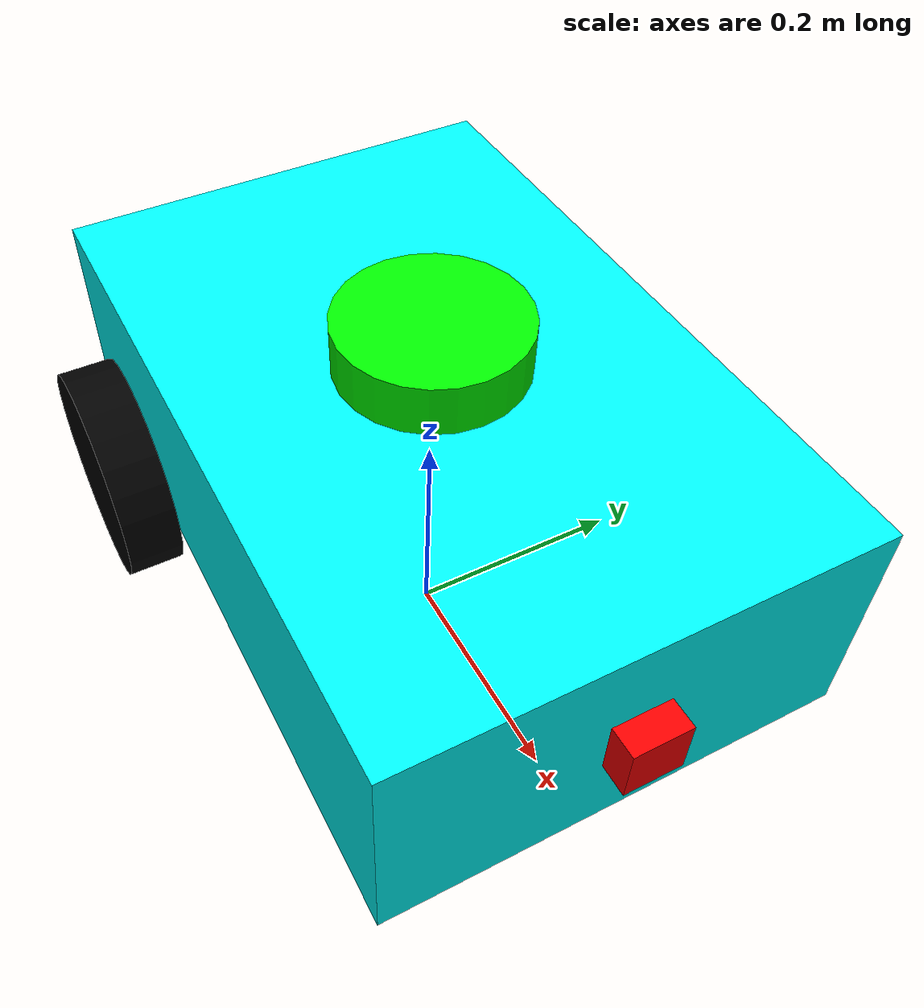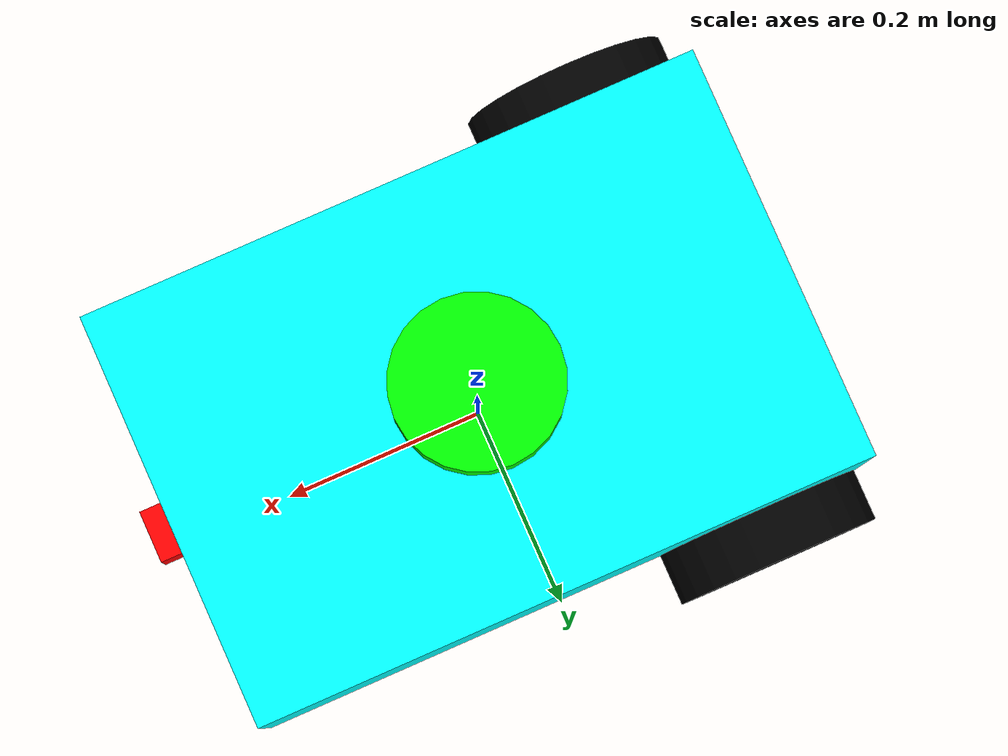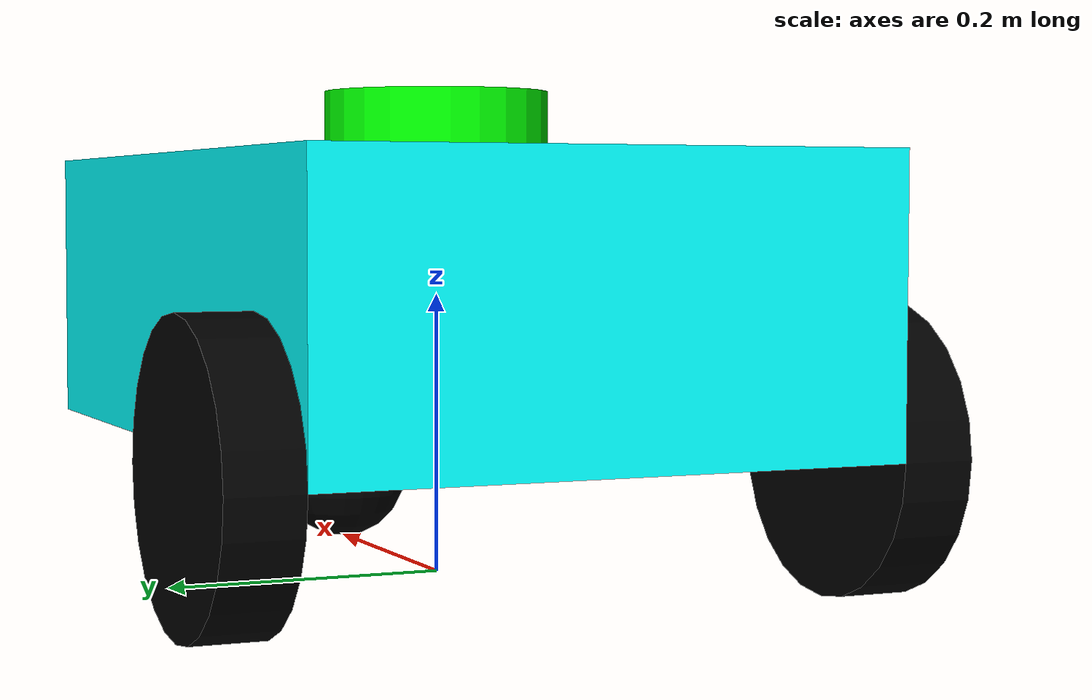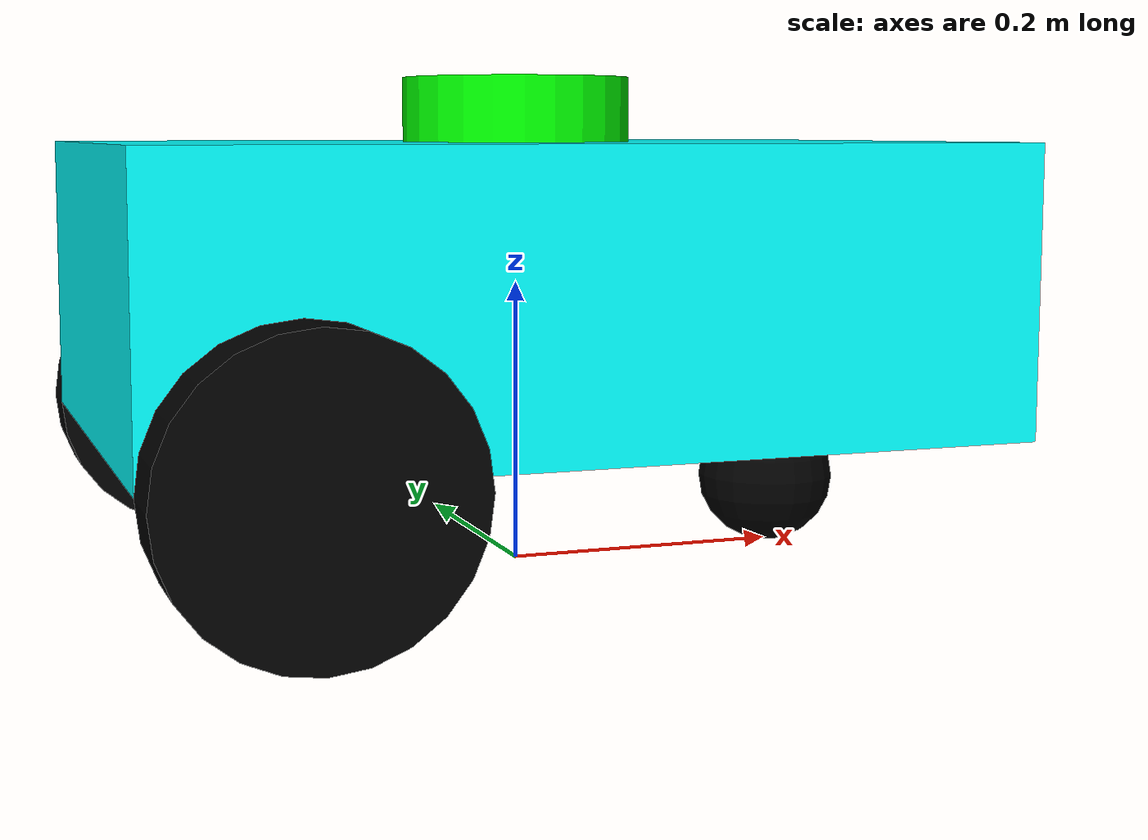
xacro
<?xml version = "1.0"?>
<robot name = "loc_robot" xmlns:xacro="http://www.ros.org/wiki/xacro">

    <xacro:include filename = "properties.xacro" />
    <xacro:include filename = "properties_gazebo.xacro" />
    <xacro:include filename = "my_robot.xacro" />
    <xacro:include filename = "camera.xacro" />
    <xacro:include filename = "lidar.xacro" />

</robot>

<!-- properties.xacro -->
<robot xmlns:xacro="http://www.ros.org/wiki/xacro">

    <material name = "cyan">
        <color rgba = "0 1 1 1" />
    </material>

    <material name = "black">
        <color rgba = "0 0 0 1" />
    </material>

    <material name = "red">
        <color rgba = "1 0 0 1" />
    </material>

    <material name = "green">
        <color rgba = "0 1 0 1" />
    </material>

    <xacro:macro name = "box_inertia" params = "m l w h xyz rpy">
        <inertial>
            <origin xyz = "${xyz}" rpy = "${rpy}" />
            <mass value = "${m}" />
            <inertia ixx = "${(m / 12) * (h*h + l*l)}" ixy = "0" ixz = "0"
                     iyy = "${(m / 12) * (w*w + l*l)}" iyz = "0"
                     izz = "${(m / 12) * (w*w + h*h)}" />
        </inertial>
    </xacro:macro>

    <xacro:macro name = "cylinder_inertia" params = "m r h xyz rpy">
        <inertial>
            <origin xyz = "${xyz}" rpy = "${rpy}" />
            <mass value = "${m}" />
            <inertia ixx = "${(m / 12) * (3*r*r + h*h)}" ixy = "0" ixz = "0"
                     iyy = "${(m / 12) * (3*r*r + h*h)}" iyz = "0"
                     izz = "${(m / 2)  * (r*r)}" />
        </inertial>
    </xacro:macro>

    <xacro:macro name = "sphere_inertia" params = "m r xyz rpy">
        <inertial>
            <origin xyz = "${xyz}" rpy = "${rpy}" />
            <mass value = "${m}" />
            <inertia ixx = "${(2 / 5) * m * r * r}" ixy = "0" ixz = "0"
                     iyy = "${(2 / 5) * m * r * r}" iyz = "0"
                     izz = "${(2 / 5) * m * r * r}" />
        </inertial>
    </xacro:macro>

</robot>

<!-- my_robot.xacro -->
<robot xmlns:xacro="http://www.ros.org/wiki/xacro">

    <xacro:property name = "base_width" value = "0.6" />
    <xacro:property name = "base_length" value = "0.4" />
    <xacro:property name = "base_height" value = "0.2" />

    <xacro:property name = "wheel_radius" value = "0.1" />
    <xacro:property name = "wheel_length" value = "0.05" />
    <xacro:property name = "caster_wheel_radius" value = "0.05" />

    <xacro:macro name = "wheel_link" params = "prefix">
        <link name = "${prefix}_wheel_link">
            <visual>
                <geometry>
                    <cylinder radius = "${wheel_radius}" length = "${wheel_length}" />
                </geometry>
                <origin xyz = "0 0 0" rpy = "${pi/2} 0 0" />
                <material name = "black" />
            </visual>

            <collision>
                <geometry>
                    <cylinder radius = "${wheel_radius}" length = "${wheel_length}" />
                </geometry>
                <origin xyz = "0 0 0" rpy = "${pi/2} 0 0" />
            </collision>

            <xacro:cylinder_inertia m = "1.0" r = "${2*wheel_radius}"
                                              h = "${2*wheel_length}"
                                              xyz = "0 0 0"
                                              rpy = "${pi/2} 0 0" />
        </link>
    </xacro:macro>

    <link name = "base_footprint" />

    <link name = "base_link">
        <visual>
            <geometry>
                <box size = "${base_width} ${base_length} ${base_height}" />
            </geometry>
            <origin xyz = "0 0 0" rpy = "0 0 0" />
            <material name = "cyan" />
        </visual>
        <collision>
            <geometry>
                <box size = "${base_width} ${base_length} ${base_height}" />
            </geometry>
            <origin xyz = "0 0 0" rpy = "0 0 0" />
        </collision>

        <xacro:box_inertia m = "5.0" l = "${2*base_length}"
                                     w = "${2*base_width}"
                                     h = "${2*base_height}"
                                     xyz = "0 0 0"
                                     rpy = "0 0 0" />
    </link>

    <xacro:wheel_link prefix = "right" />
    <xacro:wheel_link prefix = "left" />

    <link name = "caster_wheel_link">
        <visual>
            <geometry>
                <sphere radius = "${caster_wheel_radius}" />
            </geometry>
            <origin xyz = "0 0 0" rpy = "0 0 0" />
            <material name = "black" />
        </visual>

        <collision>
            <geometry>
                <sphere radius = "${caster_wheel_radius}" />
            </geometry>
            <origin xyz = "0 0 0" rpy = "0 0 0" />
        </collision>

        <xacro:sphere_inertia m = "0.5" r = "${2*caster_wheel_radius}"
                                        xyz = "0 0 0"
                                        rpy = "0 0 0" />
    </link>

    <joint name = "base_joint" type = "fixed">
        <parent link = "base_footprint" />
        <child link  = "base_link" />
        <origin xyz = "0 0 ${(base_height / 2) + wheel_radius}" rpy = "0 0 0" />
    </joint>

    <joint name = "base_right_wheel_joint" type = "continuous">
        <parent link = "base_link" />
        <child link  = "right_wheel_link" />
        <origin xyz = "${(-(base_width / 2)) + wheel_radius}
                       ${-((base_length / 2) + (wheel_length / 2))}
                       ${-wheel_radius}"
                       rpy = "0 0 0" />
        <axis xyz = "0 1 0" />
    </joint>

    <joint name = "base_left_wheel_joint" type = "continuous">
        <parent link = "base_link" />
        <child link  = "left_wheel_link" />
        <origin xyz = "${(-(base_width / 2)) + wheel_radius}
                       ${(base_length / 2) + (wheel_length / 2)}
                       ${-wheel_radius}"
                       rpy = "0 0 0" />
        <axis xyz = "0 1 0" />
    </joint>

    <joint name = "base_caster_wheel_joint" type = "fixed">
        <parent link = "base_link" />
        <child link  = "caster_wheel_link" />
        <origin xyz = "0.2 0 ${-((base_height / 2) + caster_wheel_radius)}" rpy = "0 0 0" />
    </joint>

</robot>

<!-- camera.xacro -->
<robot xmlns:xacro="http://www.ros.org/wiki/xacro">

    <xacro:property name="camera_width" value="0.05"/>
    <xacro:property name="camera_length" value="0.05"/>
    <xacro:property name="camera_height" value="0.05"/>

    <link name="camera_link">
        <visual>
        <origin xyz = "0 0 0" rpy="0 0 0"/>
        <geometry>
            <box size="${camera_width} ${camera_length} ${camera_height}"/>
        </geometry>
        <material name = "red"/>
        </visual>

        <collision>
            <origin xyz = "0 0 0" rpy="0 0 0"/>
            <geometry>
                <box size="${camera_width} ${camera_length} ${camera_height}"/>
            </geometry>
        </collision>
        <xacro:box_inertia m="0.5"  l = "${2*camera_length}"
                                    w ="${2*camera_width}"
                                    h = "${2*camera_height}"
                                    xyz = "0 0 0"
                                    rpy = "0 0 0" />

    </link>

    <joint name="base_to_camera_joint" type="fixed">
        <parent link="base_link"/>
        <child link="camera_link"/>
        <origin xyz="0.3 0 0" rpy="0 0 0" />
    </joint>

    <gazebo reference = "camera_link">
        <sensor name = "camera_sensor" type = "camera">
            <pose> 0 0 0 0 0 0 </pose>
            <visualize>true</visualize>
            <update_rate>10.0</update_rate>
            <plugin name="camera_controller" filename="libgazebo_ros_camera.so">
                <frameName>camera_link</frameName>
            </plugin>
        </sensor>
    </gazebo>

</robot>

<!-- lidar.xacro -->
<robot xmlns:xacro="http://www.ros.org/wiki/xacro">

    <xacro:property name="lidar_radius" value="0.08"/>
    <xacro:property name="lidar_length" value="0.05"/>

    <link name = "lidar_link" >
            <visual>
                <origin xyz = "0 0 0" rpy = "0 0 0"/>
                <geometry>
                    <cylinder radius = "${lidar_radius}" length = "${lidar_length}"/>
                </geometry>
                <material name="green"/>
            </visual>
            <collision>
                <origin xyz = "0 0 0" rpy = "0 0 0 "/>
                <geometry>
                    <cylinder radius = "${lidar_radius}" length = "${lidar_length}"/>
                </geometry>
            </collision>
             <xacro:cylinder_inertia m="0.2" r = "${2*lidar_radius}"
                                             h ="${2*lidar_length}"
                                             xyz = "0 0 0"
                                             rpy = "0 0 0" />
        </link>

        <joint name="base_to_lidar_joint" type="fixed">
            <parent link="base_link"/>
            <child link="lidar_link"/>
            <origin xyz="0 0 0.12"/>
        </joint>

    <gazebo reference="lidar_link">
        <sensor name="laser" type="ray">
            <pose> 0 0 0 0 0 0 </pose>
            <visualize>true</visualize>
            <update_rate>10</update_rate>
            <ray>
                <scan>
                    <horizontal>
                        <samples>180</samples>
                        <min_angle>-3.14</min_angle>
                        <max_angle>3.14</max_angle>
                    </horizontal>
                </scan>
                <range>
                    <min>0.3</min>
                    <max>12</max>
                </range>
            </ray>
            <plugin name="laser_controller" filename="libgazebo_ros_ray_sensor.so">
                <ros>
                    <argument>~/out:=scan</argument>
                </ros>
                <output_type>sensor_msgs/LaserScan</output_type>
                <frame_name>lidar_link</frame_name>
            </plugin>
        </sensor>
    </gazebo>

</robot>
